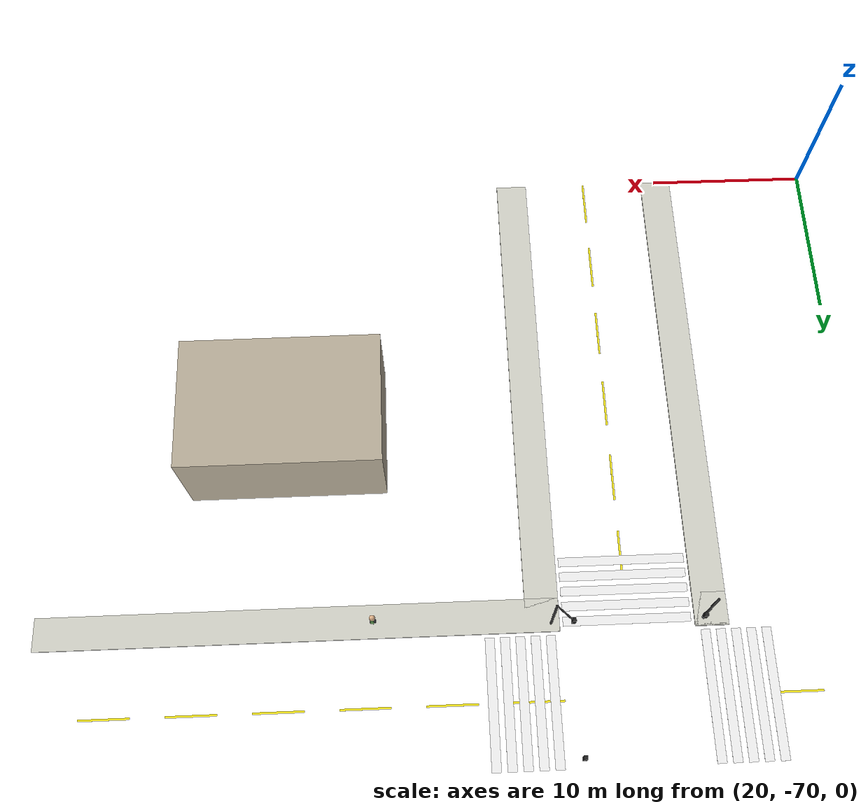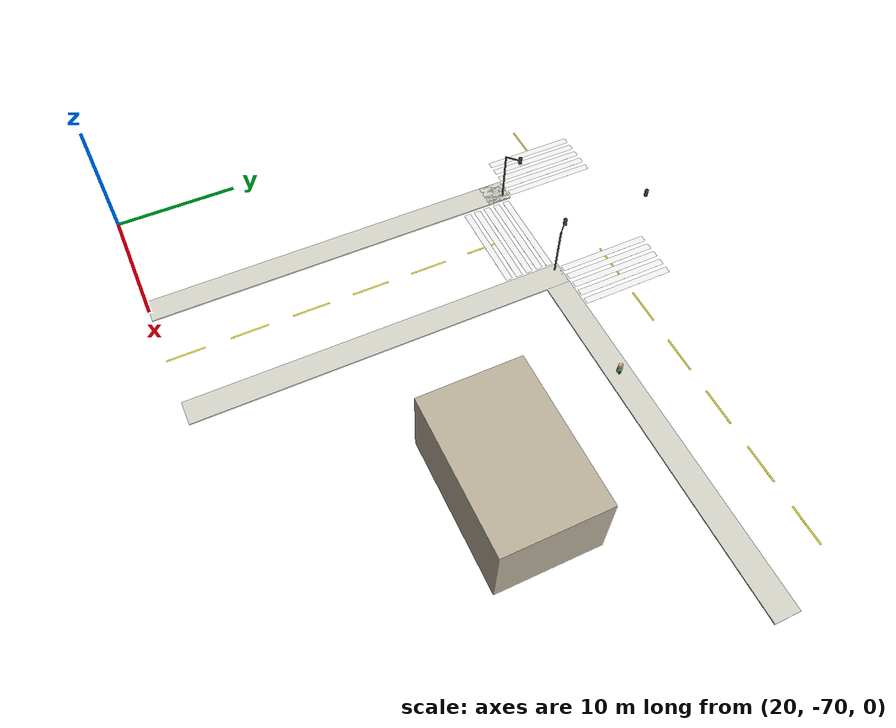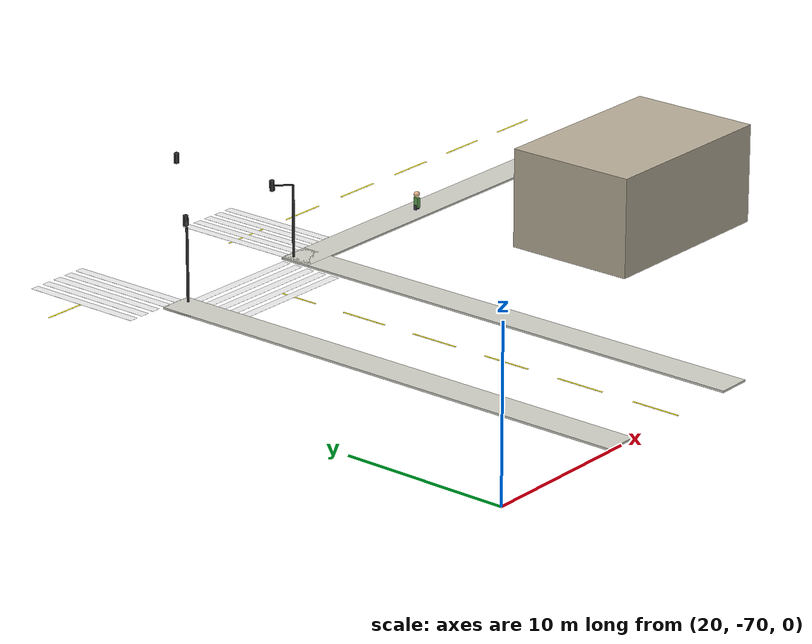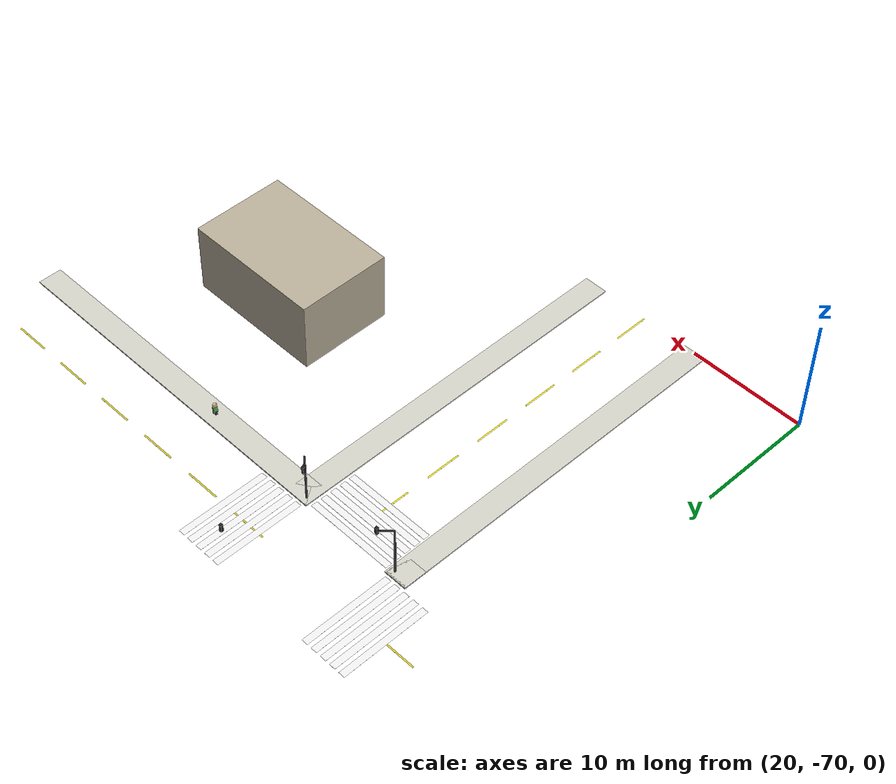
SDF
<sdf version="1.9">
 <world name="city">
  <model name="sw_v_24">
   <static>true</static>
   <pose>30.0 -54.5 0.065 0 0 0</pose>
   <link name="l">
    <collision name="c"><geometry><box><size>2.0 31.0 0.12</size></box></geometry></collision>
    <visual name="v">
     <geometry><box><size>2.0 31.0 0.12</size></box></geometry>
     <material>
      <ambient>0.82 0.82 0.78 1</ambient>
      <diffuse>0.82 0.82 0.78 1</diffuse>
      <specular>0.04 0.04 0.04 1</specular>
     </material>
    </visual>
   </link>
  </model>
  <model name="sw_v_28">
   <static>true</static>
   <pose>40.0 -54.5 0.065 0 0 0</pose>
   <link name="l">
    <collision name="c"><geometry><box><size>2.0 31.0 0.12</size></box></geometry></collision>
    <visual name="v">
     <geometry><box><size>2.0 31.0 0.12</size></box></geometry>
     <material>
      <ambient>0.82 0.82 0.78 1</ambient>
      <diffuse>0.82 0.82 0.78 1</diffuse>
      <specular>0.04 0.04 0.04 1</specular>
     </material>
    </visual>
   </link>
  </model>
  <model name="sw_h_35">
   <static>true</static>
   <pose>54.5 -40.0 0.065 0 0 0</pose>
   <link name="l">
    <collision name="c"><geometry><box><size>31.0 2.0 0.12</size></box></geometry></collision>
    <visual name="v">
     <geometry><box><size>31.0 2.0 0.12</size></box></geometry>
     <material>
      <ambient>0.82 0.82 0.78 1</ambient>
      <diffuse>0.82 0.82 0.78 1</diffuse>
      <specular>0.04 0.04 0.04 1</specular>
     </material>
    </visual>
   </link>
  </model>
  <model name="sw_corner_80">
   <static>true</static>
   <pose>30.0 -40.0 0.065 0 0 0</pose>
   <link name="l">
    <collision name="c"><geometry><box><size>2.0 2.0 0.12</size></box></geometry></collision>
    <visual name="v">
     <geometry><box><size>2.0 2.0 0.12</size></box></geometry>
     <material>
      <ambient>0.82 0.82 0.78 1</ambient>
      <diffuse>0.82 0.82 0.78 1</diffuse>
      <specular>0.04 0.04 0.04 1</specular>
     </material>
    </visual>
   </link>
  </model>
  <model name="sw_corner_82">
   <static>true</static>
   <pose>40.0 -40.0 0.065 0 0 0</pose>
   <link name="l">
    <collision name="c"><geometry><box><size>2.0 2.0 0.12</size></box></geometry></collision>
    <visual name="v">
     <geometry><box><size>2.0 2.0 0.12</size></box></geometry>
     <material>
      <ambient>0.82 0.82 0.78 1</ambient>
      <diffuse>0.82 0.82 0.78 1</diffuse>
      <specular>0.04 0.04 0.04 1</specular>
     </material>
    </visual>
   </link>
  </model>
  <model name="cw_s_212">
   <static>true</static>
   <pose>35.0 -39.575 0.013000000000000001 0 0 0</pose>
   <link name="l">
    <visual name="v">
     <geometry><box><size>7.6 0.55 0.005</size></box></geometry>
     <material>
      <ambient>0.94 0.94 0.94 1</ambient>
      <diffuse>0.94 0.94 0.94 1</diffuse>
      <specular>0.04 0.04 0.04 1</specular>
     </material>
    </visual>
   </link>
  </model>
  <model name="cw_w_214">
   <static>true</static>
   <pose>30.425 -35.0 0.013000000000000001 0 0 0</pose>
   <link name="l">
    <visual name="v">
     <geometry><box><size>0.55 7.6 0.005</size></box></geometry>
     <material>
      <ambient>0.94 0.94 0.94 1</ambient>
      <diffuse>0.94 0.94 0.94 1</diffuse>
      <specular>0.04 0.04 0.04 1</specular>
     </material>
    </visual>
   </link>
  </model>
  <model name="cw_e_215">
   <static>true</static>
   <pose>39.575 -35.0 0.013000000000000001 0 0 0</pose>
   <link name="l">
    <visual name="v">
     <geometry><box><size>0.55 7.6 0.005</size></box></geometry>
     <material>
      <ambient>0.94 0.94 0.94 1</ambient>
      <diffuse>0.94 0.94 0.94 1</diffuse>
      <specular>0.04 0.04 0.04 1</specular>
     </material>
    </visual>
   </link>
  </model>
  <model name="cw_s_216">
   <static>true</static>
   <pose>35.0 -40.475 0.013000000000000001 0 0 0</pose>
   <link name="l">
    <visual name="v">
     <geometry><box><size>7.6 0.55 0.005</size></box></geometry>
     <material>
      <ambient>0.94 0.94 0.94 1</ambient>
      <diffuse>0.94 0.94 0.94 1</diffuse>
      <specular>0.04 0.04 0.04 1</specular>
     </material>
    </visual>
   </link>
  </model>
  <model name="cw_w_218">
   <static>true</static>
   <pose>29.525 -35.0 0.013000000000000001 0 0 0</pose>
   <link name="l">
    <visual name="v">
     <geometry><box><size>0.55 7.6 0.005</size></box></geometry>
     <material>
      <ambient>0.94 0.94 0.94 1</ambient>
      <diffuse>0.94 0.94 0.94 1</diffuse>
      <specular>0.04 0.04 0.04 1</specular>
     </material>
    </visual>
   </link>
  </model>
  <model name="cw_e_219">
   <static>true</static>
   <pose>40.475 -35.0 0.013000000000000001 0 0 0</pose>
   <link name="l">
    <visual name="v">
     <geometry><box><size>0.55 7.6 0.005</size></box></geometry>
     <material>
      <ambient>0.94 0.94 0.94 1</ambient>
      <diffuse>0.94 0.94 0.94 1</diffuse>
      <specular>0.04 0.04 0.04 1</specular>
     </material>
    </visual>
   </link>
  </model>
  <model name="cw_s_220">
   <static>true</static>
   <pose>35.0 -41.375 0.013000000000000001 0 0 0</pose>
   <link name="l">
    <visual name="v">
     <geometry><box><size>7.6 0.55 0.005</size></box></geometry>
     <material>
      <ambient>0.94 0.94 0.94 1</ambient>
      <diffuse>0.94 0.94 0.94 1</diffuse>
      <specular>0.04 0.04 0.04 1</specular>
     </material>
    </visual>
   </link>
  </model>
  <model name="cw_w_222">
   <static>true</static>
   <pose>28.625 -35.0 0.013000000000000001 0 0 0</pose>
   <link name="l">
    <visual name="v">
     <geometry><box><size>0.55 7.6 0.005</size></box></geometry>
     <material>
      <ambient>0.94 0.94 0.94 1</ambient>
      <diffuse>0.94 0.94 0.94 1</diffuse>
      <specular>0.04 0.04 0.04 1</specular>
     </material>
    </visual>
   </link>
  </model>
  <model name="cw_e_223">
   <static>true</static>
   <pose>41.375 -35.0 0.013000000000000001 0 0 0</pose>
   <link name="l">
    <visual name="v">
     <geometry><box><size>0.55 7.6 0.005</size></box></geometry>
     <material>
      <ambient>0.94 0.94 0.94 1</ambient>
      <diffuse>0.94 0.94 0.94 1</diffuse>
      <specular>0.04 0.04 0.04 1</specular>
     </material>
    </visual>
   </link>
  </model>
  <model name="cw_s_224">
   <static>true</static>
   <pose>35.0 -42.275 0.013000000000000001 0 0 0</pose>
   <link name="l">
    <visual name="v">
     <geometry><box><size>7.6 0.55 0.005</size></box></geometry>
     <material>
      <ambient>0.94 0.94 0.94 1</ambient>
      <diffuse>0.94 0.94 0.94 1</diffuse>
      <specular>0.04 0.04 0.04 1</specular>
     </material>
    </visual>
   </link>
  </model>
  <model name="cw_w_226">
   <static>true</static>
   <pose>27.725 -35.0 0.013000000000000001 0 0 0</pose>
   <link name="l">
    <visual name="v">
     <geometry><box><size>0.55 7.6 0.005</size></box></geometry>
     <material>
      <ambient>0.94 0.94 0.94 1</ambient>
      <diffuse>0.94 0.94 0.94 1</diffuse>
      <specular>0.04 0.04 0.04 1</specular>
     </material>
    </visual>
   </link>
  </model>
  <model name="cw_e_227">
   <static>true</static>
   <pose>42.275 -35.0 0.013000000000000001 0 0 0</pose>
   <link name="l">
    <visual name="v">
     <geometry><box><size>0.55 7.6 0.005</size></box></geometry>
     <material>
      <ambient>0.94 0.94 0.94 1</ambient>
      <diffuse>0.94 0.94 0.94 1</diffuse>
      <specular>0.04 0.04 0.04 1</specular>
     </material>
    </visual>
   </link>
  </model>
  <model name="cw_s_228">
   <static>true</static>
   <pose>35.0 -43.175 0.013000000000000001 0 0 0</pose>
   <link name="l">
    <visual name="v">
     <geometry><box><size>7.6 0.55 0.005</size></box></geometry>
     <material>
      <ambient>0.94 0.94 0.94 1</ambient>
      <diffuse>0.94 0.94 0.94 1</diffuse>
      <specular>0.04 0.04 0.04 1</specular>
     </material>
    </visual>
   </link>
  </model>
  <model name="cw_w_230">
   <static>true</static>
   <pose>26.825 -35.0 0.013000000000000001 0 0 0</pose>
   <link name="l">
    <visual name="v">
     <geometry><box><size>0.55 7.6 0.005</size></box></geometry>
     <material>
      <ambient>0.94 0.94 0.94 1</ambient>
      <diffuse>0.94 0.94 0.94 1</diffuse>
      <specular>0.04 0.04 0.04 1</specular>
     </material>
    </visual>
   </link>
  </model>
  <model name="cw_e_231">
   <static>true</static>
   <pose>43.175 -35.0 0.013000000000000001 0 0 0</pose>
   <link name="l">
    <visual name="v">
     <geometry><box><size>0.55 7.6 0.005</size></box></geometry>
     <material>
      <ambient>0.94 0.94 0.94 1</ambient>
      <diffuse>0.94 0.94 0.94 1</diffuse>
      <specular>0.04 0.04 0.04 1</specular>
     </material>
    </visual>
   </link>
  </model>
  <model name="dash_316">
   <static>true</static>
   <pose>35.0 -68.5 0.012 0 0 0</pose>
   <link name="l">
    <visual name="v">
     <geometry><box><size>0.12 3.0 0.003</size></box></geometry>
     <material>
      <ambient>0.95 0.9 0.1 1</ambient>
      <diffuse>0.95 0.9 0.1 1</diffuse>
      <specular>0.04 0.04 0.04 1</specular>
     </material>
    </visual>
   </link>
  </model>
  <model name="dash_317">
   <static>true</static>
   <pose>35.0 -63.5 0.012 0 0 0</pose>
   <link name="l">
    <visual name="v">
     <geometry><box><size>0.12 3.0 0.003</size></box></geometry>
     <material>
      <ambient>0.95 0.9 0.1 1</ambient>
      <diffuse>0.95 0.9 0.1 1</diffuse>
      <specular>0.04 0.04 0.04 1</specular>
     </material>
    </visual>
   </link>
  </model>
  <model name="dash_318">
   <static>true</static>
   <pose>35.0 -58.5 0.012 0 0 0</pose>
   <link name="l">
    <visual name="v">
     <geometry><box><size>0.12 3.0 0.003</size></box></geometry>
     <material>
      <ambient>0.95 0.9 0.1 1</ambient>
      <diffuse>0.95 0.9 0.1 1</diffuse>
      <specular>0.04 0.04 0.04 1</specular>
     </material>
    </visual>
   </link>
  </model>
  <model name="dash_319">
   <static>true</static>
   <pose>35.0 -53.5 0.012 0 0 0</pose>
   <link name="l">
    <visual name="v">
     <geometry><box><size>0.12 3.0 0.003</size></box></geometry>
     <material>
      <ambient>0.95 0.9 0.1 1</ambient>
      <diffuse>0.95 0.9 0.1 1</diffuse>
      <specular>0.04 0.04 0.04 1</specular>
     </material>
    </visual>
   </link>
  </model>
  <model name="dash_320">
   <static>true</static>
   <pose>35.0 -48.5 0.012 0 0 0</pose>
   <link name="l">
    <visual name="v">
     <geometry><box><size>0.12 3.0 0.003</size></box></geometry>
     <material>
      <ambient>0.95 0.9 0.1 1</ambient>
      <diffuse>0.95 0.9 0.1 1</diffuse>
      <specular>0.04 0.04 0.04 1</specular>
     </material>
    </visual>
   </link>
  </model>
  <model name="dash_321">
   <static>true</static>
   <pose>35.0 -43.5 0.012 0 0 0</pose>
   <link name="l">
    <visual name="v">
     <geometry><box><size>0.12 3.0 0.003</size></box></geometry>
     <material>
      <ambient>0.95 0.9 0.1 1</ambient>
      <diffuse>0.95 0.9 0.1 1</diffuse>
      <specular>0.04 0.04 0.04 1</specular>
     </material>
    </visual>
   </link>
  </model>
  <model name="dash_353">
   <static>true</static>
   <pose>25.5 -35.0 0.012 0 0 0</pose>
   <link name="l">
    <visual name="v">
     <geometry><box><size>3.0 0.12 0.003</size></box></geometry>
     <material>
      <ambient>0.95 0.9 0.1 1</ambient>
      <diffuse>0.95 0.9 0.1 1</diffuse>
      <specular>0.04 0.04 0.04 1</specular>
     </material>
    </visual>
   </link>
  </model>
  <model name="dash_354">
   <static>true</static>
   <pose>40.5 -35.0 0.012 0 0 0</pose>
   <link name="l">
    <visual name="v">
     <geometry><box><size>3.0 0.12 0.003</size></box></geometry>
     <material>
      <ambient>0.95 0.9 0.1 1</ambient>
      <diffuse>0.95 0.9 0.1 1</diffuse>
      <specular>0.04 0.04 0.04 1</specular>
     </material>
    </visual>
   </link>
  </model>
  <model name="dash_355">
   <static>true</static>
   <pose>45.5 -35.0 0.012 0 0 0</pose>
   <link name="l">
    <visual name="v">
     <geometry><box><size>3.0 0.12 0.003</size></box></geometry>
     <material>
      <ambient>0.95 0.9 0.1 1</ambient>
      <diffuse>0.95 0.9 0.1 1</diffuse>
      <specular>0.04 0.04 0.04 1</specular>
     </material>
    </visual>
   </link>
  </model>
  <model name="dash_356">
   <static>true</static>
   <pose>50.5 -35.0 0.012 0 0 0</pose>
   <link name="l">
    <visual name="v">
     <geometry><box><size>3.0 0.12 0.003</size></box></geometry>
     <material>
      <ambient>0.95 0.9 0.1 1</ambient>
      <diffuse>0.95 0.9 0.1 1</diffuse>
      <specular>0.04 0.04 0.04 1</specular>
     </material>
    </visual>
   </link>
  </model>
  <model name="dash_357">
   <static>true</static>
   <pose>55.5 -35.0 0.012 0 0 0</pose>
   <link name="l">
    <visual name="v">
     <geometry><box><size>3.0 0.12 0.003</size></box></geometry>
     <material>
      <ambient>0.95 0.9 0.1 1</ambient>
      <diffuse>0.95 0.9 0.1 1</diffuse>
      <specular>0.04 0.04 0.04 1</specular>
     </material>
    </visual>
   </link>
  </model>
  <model name="dash_358">
   <static>true</static>
   <pose>60.5 -35.0 0.012 0 0 0</pose>
   <link name="l">
    <visual name="v">
     <geometry><box><size>3.0 0.12 0.003</size></box></geometry>
     <material>
      <ambient>0.95 0.9 0.1 1</ambient>
      <diffuse>0.95 0.9 0.1 1</diffuse>
      <specular>0.04 0.04 0.04 1</specular>
     </material>
    </visual>
   </link>
  </model>
  <model name="dash_359">
   <static>true</static>
   <pose>65.5 -35.0 0.012 0 0 0</pose>
   <link name="l">
    <visual name="v">
     <geometry><box><size>3.0 0.12 0.003</size></box></geometry>
     <material>
      <ambient>0.95 0.9 0.1 1</ambient>
      <diffuse>0.95 0.9 0.1 1</diffuse>
      <specular>0.04 0.04 0.04 1</specular>
     </material>
    </visual>
   </link>
  </model>
  <model name="ped18_t_642">
   <static>true</static>
   <pose>50 -40.0 0.575 0 0 4.560000000000001</pose>
   <link name="l">
    <collision name="c"><geometry><box><size>0.35 0.2 0.6</size></box></geometry></collision>
    <visual name="v">
     <geometry><box><size>0.35 0.2 0.6</size></box></geometry>
     <material>
      <ambient>0.4 0.65 0.35 1</ambient>
      <diffuse>0.4 0.65 0.35 1</diffuse>
      <specular>0.04 0.04 0.04 1</specular>
     </material>
    </visual>
   </link>
  </model>
  <model name="ped18_h_643">
   <static>true</static>
   <pose>50 -40.0 1.075 0 0 0</pose>
   <link name="l">
    <visual name="v">
     <geometry><sphere><radius>0.18</radius></sphere></geometry>
     <material><ambient>0.9 0.72 0.56 1</ambient><diffuse>0.9 0.72 0.56 1</diffuse></material>
    </visual>
   </link>
  </model>
  <model name="ped18_l-0.1_644">
   <static>true</static>
   <pose>49.9 -40.0 0.275 0 0 0</pose>
   <link name="l">
    <collision name="c"><geometry><box><size>0.14 0.16 0.3</size></box></geometry></collision>
    <visual name="v">
     <geometry><box><size>0.14 0.16 0.3</size></box></geometry>
     <material>
      <ambient>0.25 0.25 0.3 1</ambient>
      <diffuse>0.25 0.25 0.3 1</diffuse>
      <specular>0.04 0.04 0.04 1</specular>
     </material>
    </visual>
   </link>
  </model>
  <model name="ped18_l0.1_645">
   <static>true</static>
   <pose>50.1 -40.0 0.275 0 0 0</pose>
   <link name="l">
    <collision name="c"><geometry><box><size>0.14 0.16 0.3</size></box></geometry></collision>
    <visual name="v">
     <geometry><box><size>0.14 0.16 0.3</size></box></geometry>
     <material>
      <ambient>0.25 0.25 0.3 1</ambient>
      <diffuse>0.25 0.25 0.3 1</diffuse>
      <specular>0.04 0.04 0.04 1</specular>
     </material>
    </visual>
   </link>
  </model>
  <model name="tl_35_-35_0_pole_834">
   <static>true</static>
   <pose>30.5 -39.5 2.255 0 0 0</pose>
   <link name="l">
    <collision name="c">
     <geometry><cylinder><radius>0.08</radius><length>4.5</length></cylinder></geometry>
    </collision>
    <visual name="v">
     <geometry><cylinder><radius>0.08</radius><length>4.5</length></cylinder></geometry>
     <material><ambient>0.2 0.2 0.2 1</ambient><diffuse>0.2 0.2 0.2 1</diffuse></material>
    </visual>
   </link>
  </model>
  <model name="tl_35_-35_0_arm_835">
   <static>true</static>
   <pose>30.92443296150032 -39.07590489133678 4.505 0 0 0.785</pose>
   <link name="l">
    <collision name="c"><geometry><box><size>1.2 0.08 0.08</size></box></geometry></collision>
    <visual name="v">
     <geometry><box><size>1.2 0.08 0.08</size></box></geometry>
     <material>
      <ambient>0.2 0.2 0.2 1</ambient>
      <diffuse>0.2 0.2 0.2 1</diffuse>
      <specular>0.04 0.04 0.04 1</specular>
     </material>
    </visual>
   </link>
  </model>
  <model name="tl_35_-35_0_hous_836">
   <static>true</static>
   <pose>31.34886592300064 -38.65180978267356 4.505 0 0 0</pose>
   <link name="l">
    <collision name="c"><geometry><box><size>0.22 0.22 0.65</size></box></geometry></collision>
    <visual name="v">
     <geometry><box><size>0.22 0.22 0.65</size></box></geometry>
     <material>
      <ambient>0.12 0.12 0.12 1</ambient>
      <diffuse>0.12 0.12 0.12 1</diffuse>
      <specular>0.04 0.04 0.04 1</specular>
     </material>
    </visual>
   </link>
  </model>
  <model name="tl_35_-35_0_l0_837">
   <static>true</static>
   <pose>31.34886592300064 -38.65180978267356 4.705 0 0 0</pose>
   <link name="l">
    <visual name="v">
     <geometry><sphere><radius>0.07</radius></sphere></geometry>
     <material><ambient>0.95 0.08 0.08 1</ambient><diffuse>0.95 0.08 0.08 1</diffuse></material>
    </visual>
   </link>
  </model>
  <model name="tl_35_-35_0_l1_838">
   <static>true</static>
   <pose>31.34886592300064 -38.65180978267356 4.505 0 0 0</pose>
   <link name="l">
    <visual name="v">
     <geometry><sphere><radius>0.07</radius></sphere></geometry>
     <material><ambient>0.9 0.8 0.05 1</ambient><diffuse>0.9 0.8 0.05 1</diffuse></material>
    </visual>
   </link>
  </model>
  <model name="tl_35_-35_0_l2_839">
   <static>true</static>
   <pose>31.34886592300064 -38.65180978267356 4.305 0 0 0</pose>
   <link name="l">
    <visual name="v">
     <geometry><sphere><radius>0.07</radius></sphere></geometry>
     <material><ambient>0.05 0.85 0.15 1</ambient><diffuse>0.05 0.85 0.15 1</diffuse></material>
    </visual>
   </link>
  </model>
  <model name="tl_35_-35_1_pole_840">
   <static>true</static>
   <pose>39.5 -39.5 2.255 0 0 0</pose>
   <link name="l">
    <collision name="c">
     <geometry><cylinder><radius>0.08</radius><length>4.5</length></cylinder></geometry>
    </collision>
    <visual name="v">
     <geometry><cylinder><radius>0.08</radius><length>4.5</length></cylinder></geometry>
     <material><ambient>0.2 0.2 0.2 1</ambient><diffuse>0.2 0.2 0.2 1</diffuse></material>
    </visual>
   </link>
  </model>
  <model name="tl_35_-35_1_arm_841">
   <static>true</static>
   <pose>39.07581845451208 -39.07565342411246 4.505 0 0 2.356</pose>
   <link name="l">
    <collision name="c"><geometry><box><size>1.2 0.08 0.08</size></box></geometry></collision>
    <visual name="v">
     <geometry><box><size>1.2 0.08 0.08</size></box></geometry>
     <material>
      <ambient>0.2 0.2 0.2 1</ambient>
      <diffuse>0.2 0.2 0.2 1</diffuse>
      <specular>0.04 0.04 0.04 1</specular>
     </material>
    </visual>
   </link>
  </model>
  <model name="tl_35_-35_1_hous_842">
   <static>true</static>
   <pose>38.651636909024155 -38.65130684822492 4.505 0 0 0</pose>
   <link name="l">
    <collision name="c"><geometry><box><size>0.22 0.22 0.65</size></box></geometry></collision>
    <visual name="v">
     <geometry><box><size>0.22 0.22 0.65</size></box></geometry>
     <material>
      <ambient>0.12 0.12 0.12 1</ambient>
      <diffuse>0.12 0.12 0.12 1</diffuse>
      <specular>0.04 0.04 0.04 1</specular>
     </material>
    </visual>
   </link>
  </model>
  <model name="tl_35_-35_1_l0_843">
   <static>true</static>
   <pose>38.651636909024155 -38.65130684822492 4.705 0 0 0</pose>
   <link name="l">
    <visual name="v">
     <geometry><sphere><radius>0.07</radius></sphere></geometry>
     <material><ambient>0.95 0.08 0.08 1</ambient><diffuse>0.95 0.08 0.08 1</diffuse></material>
    </visual>
   </link>
  </model>
  <model name="tl_35_-35_1_l1_844">
   <static>true</static>
   <pose>38.651636909024155 -38.65130684822492 4.505 0 0 0</pose>
   <link name="l">
    <visual name="v">
     <geometry><sphere><radius>0.07</radius></sphere></geometry>
     <material><ambient>0.9 0.8 0.05 1</ambient><diffuse>0.9 0.8 0.05 1</diffuse></material>
    </visual>
   </link>
  </model>
  <model name="tl_35_-35_1_l2_845">
   <static>true</static>
   <pose>38.651636909024155 -38.65130684822492 4.305 0 0 0</pose>
   <link name="l">
    <visual name="v">
     <geometry><sphere><radius>0.07</radius></sphere></geometry>
     <material><ambient>0.05 0.85 0.15 1</ambient><diffuse>0.05 0.85 0.15 1</diffuse></material>
    </visual>
   </link>
  </model>
  <model name="tl_35_-35_3_hous_854">
   <static>true</static>
   <pose>38.651636909024155 -31.348693151775077 4.505 0 0 0</pose>
   <link name="l">
    <collision name="c"><geometry><box><size>0.22 0.22 0.65</size></box></geometry></collision>
    <visual name="v">
     <geometry><box><size>0.22 0.22 0.65</size></box></geometry>
     <material>
      <ambient>0.12 0.12 0.12 1</ambient>
      <diffuse>0.12 0.12 0.12 1</diffuse>
      <specular>0.04 0.04 0.04 1</specular>
     </material>
    </visual>
   </link>
  </model>
  <model name="tl_35_-35_3_l0_855">
   <static>true</static>
   <pose>38.651636909024155 -31.348693151775077 4.705 0 0 0</pose>
   <link name="l">
    <visual name="v">
     <geometry><sphere><radius>0.07</radius></sphere></geometry>
     <material><ambient>0.95 0.08 0.08 1</ambient><diffuse>0.95 0.08 0.08 1</diffuse></material>
    </visual>
   </link>
  </model>
  <model name="tl_35_-35_3_l1_856">
   <static>true</static>
   <pose>38.651636909024155 -31.348693151775077 4.505 0 0 0</pose>
   <link name="l">
    <visual name="v">
     <geometry><sphere><radius>0.07</radius></sphere></geometry>
     <material><ambient>0.9 0.8 0.05 1</ambient><diffuse>0.9 0.8 0.05 1</diffuse></material>
    </visual>
   </link>
  </model>
  <model name="tl_35_-35_3_l2_857">
   <static>true</static>
   <pose>38.651636909024155 -31.348693151775077 4.305 0 0 0</pose>
   <link name="l">
    <visual name="v">
     <geometry><sphere><radius>0.07</radius></sphere></geometry>
     <material><ambient>0.05 0.85 0.15 1</ambient><diffuse>0.05 0.85 0.15 1</diffuse></material>
    </visual>
   </link>
  </model>
  <model name="bld_954">
   <static>true</static>
   <pose>55 -52.0 3.005 0 0 0</pose>
   <link name="l">
    <collision name="c"><geometry><box><size>12 8 6</size></box></geometry></collision>
    <visual name="v">
     <geometry><box><size>12 8 6</size></box></geometry>
     <material>
      <ambient>0.72 0.68 0.6 1</ambient>
      <diffuse>0.72 0.68 0.6 1</diffuse>
      <specular>0.04 0.04 0.04 1</specular>
     </material>
    </visual>
   </link>
  </model>
 </world>
</sdf>
